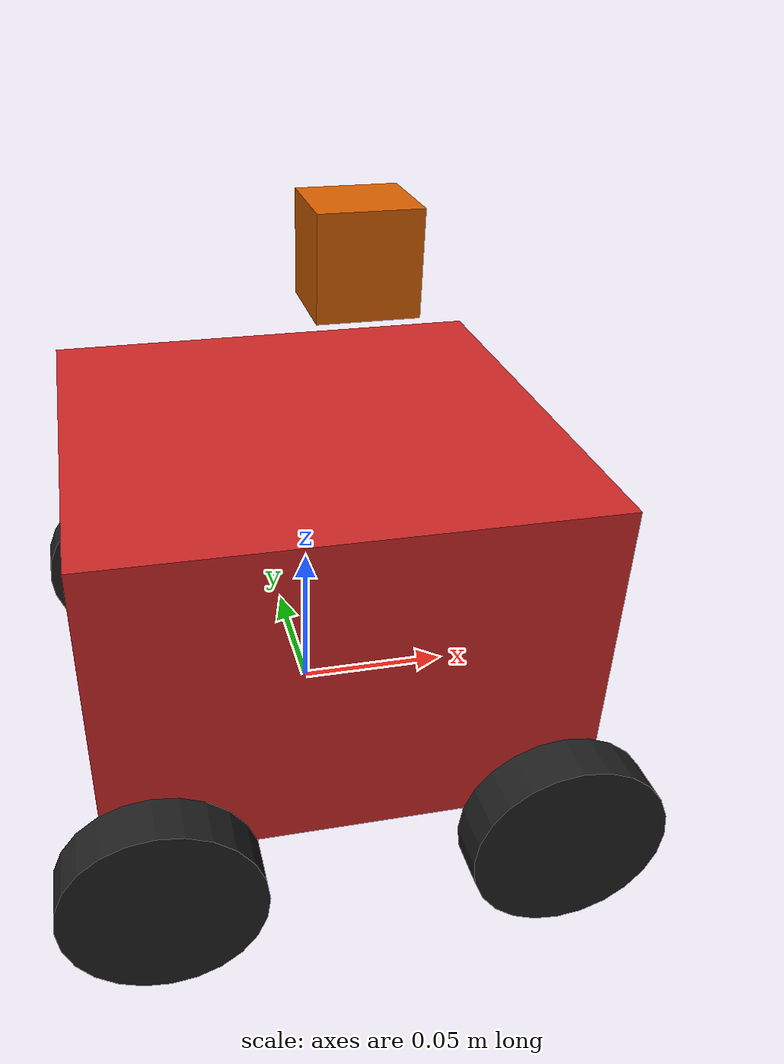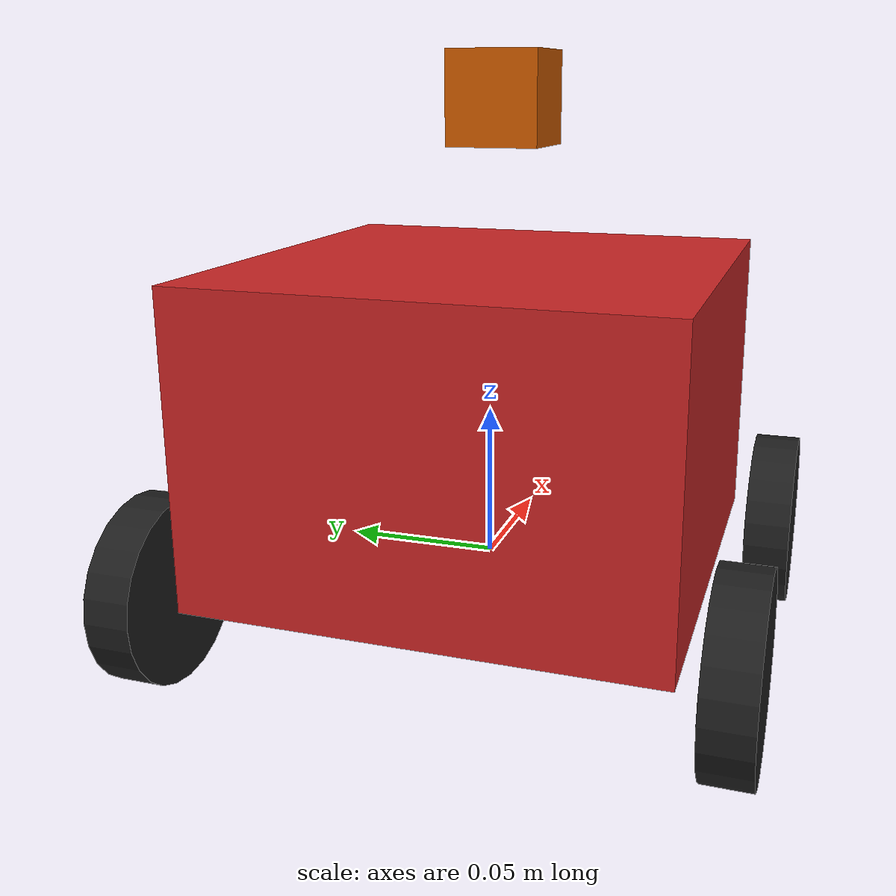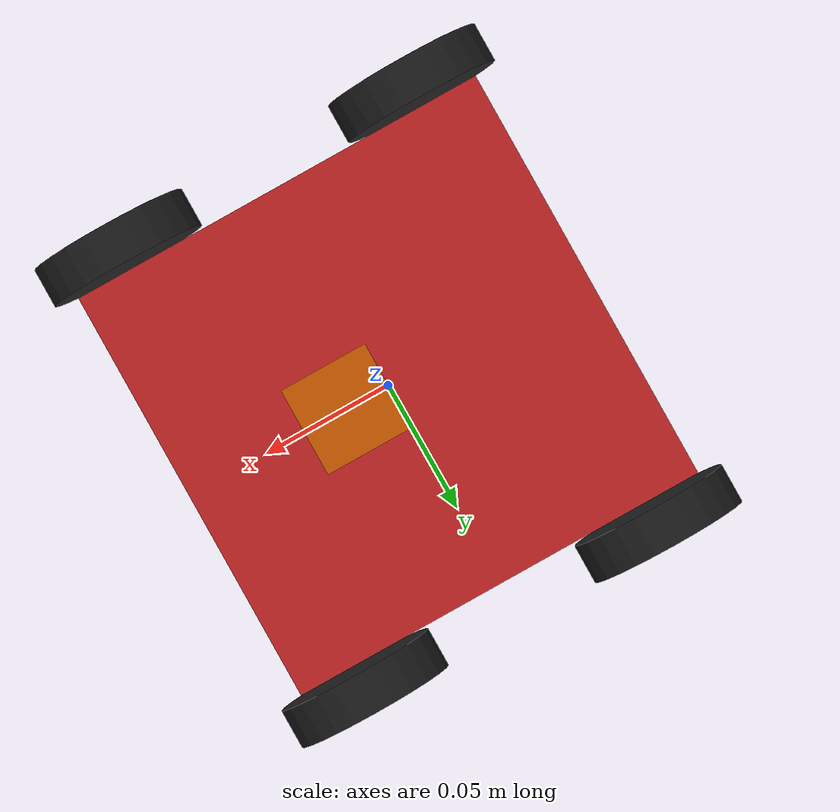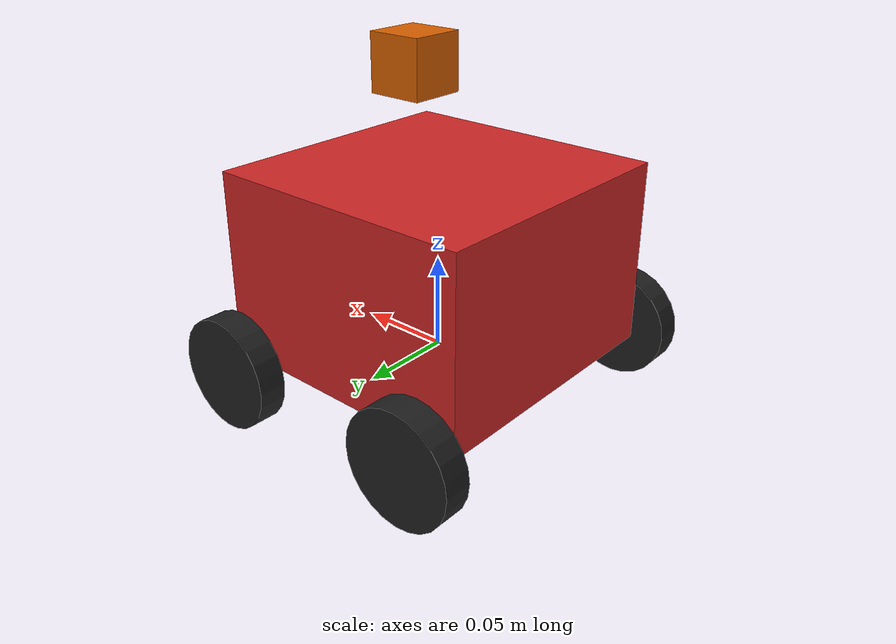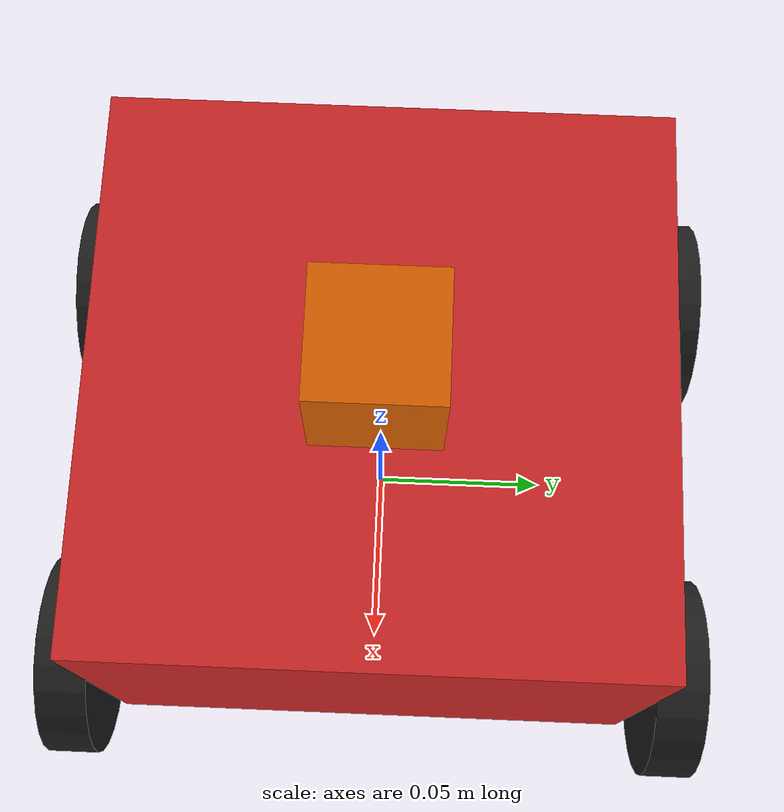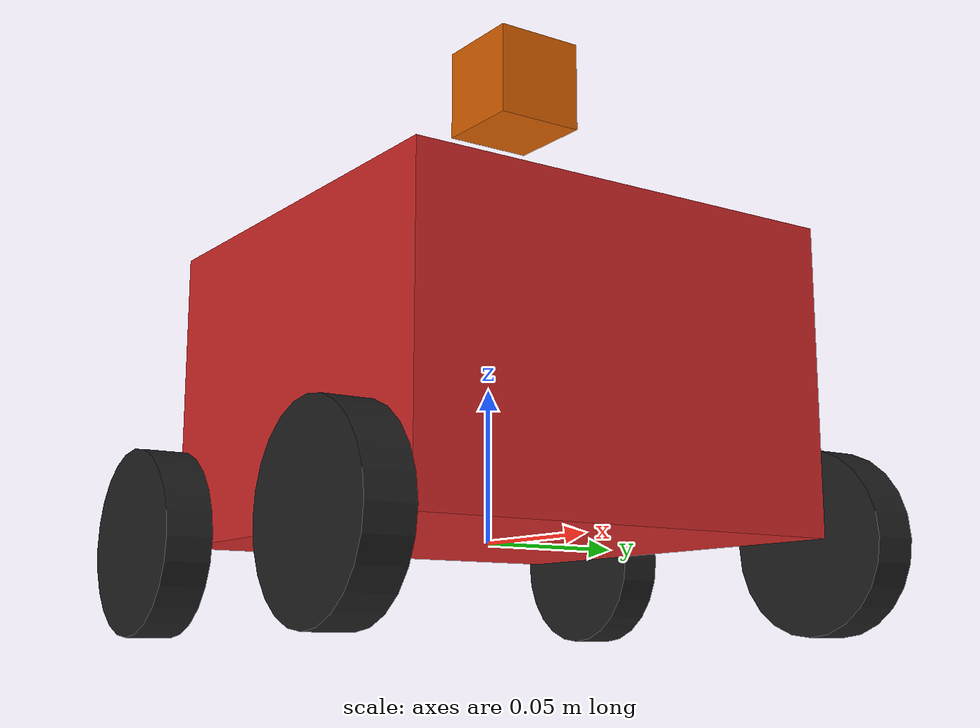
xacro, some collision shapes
<?xml version='1.0'?>

<robot name="atom" xmlns:xacro="http://www.ros.org/wiki/xacro">
	<xacro:property name="robot_name" value="atom" />
	<xacro:property name="robot_chassis_mass" value="15"/>
	<xacro:property name="robot_chassis_length" value="0.06"/>
	<xacro:property name="robot_chassis_radius" value="0.075"/>
	<xacro:property name="robot_caster_wheel_radius" value="0.015"/>
	<xacro:property name="robot_caster_wheel_radius_collision" value="0.01497"/>

	<xacro:property name="robot_wheel_mass" value="5"/>
	<xacro:property name="robot_wheel_length" value="0.015"/>
	<xacro:property name="robot_wheel_radius" value="0.03"/>
	<xacro:property name="hokoyu_mass" value="1e-5"/>

	<!-- Make Chassis of Bot -->
	<link name="chassis">
		<pose>0 0 0.1 0 0 0</pose>

		<inertial>
			<mass value="${robot_chassis_mass}"/>
      		<origin xyz="0.0 0 0" rpy=" 0 0 0"/>

      		<inertia
      			ixx="0.147116667" ixy="0" ixz="0"
      			iyy="0.334951167" iyz="0"
      			izz="0.3978345"
      		/>
		</inertial>

		<collision name="collision">
			<origin xyz="0 0 0.05" rpy=" 0 0 0"/>
			<geometry>
				<box size="0.15 0.15 0.1"/>
			</geometry>
		</collision>

		<visual name="chassis_visual">
			<origin xyz="0 0 0.05" rpy=" 0 0 0"/>
			<geometry>
				<box size="0.15 0.15 0.1"/>
			</geometry>

		</visual>

	</link>

	<!-- Right Wheel Back -->
	<link name="right_wheel_back">
		<inertial>
			<mass value="${robot_wheel_mass}"/>
			<origin xyz="0 0 0" rpy="0 1.5707 1.5707"/>
			<inertia
				ixx="0.1" ixy="0.0" ixz="0.0"
				iyy="0.1" iyz="0.0"
				izz="0.1"
			/>
		</inertial>

		<visual>
			<origin xyz="0 0 0" rpy="0 1.5707 1.5707"/>
			<geometry>
				<cylinder radius="${robot_wheel_radius}" length="${robot_wheel_length}"/>
			</geometry>
		</visual>

		<collision>
			<origin xyz="0 0 0" rpy="0 1.5707 1.5707"/>
			<geometry>
				<cylinder radius="${robot_wheel_radius}" length="${robot_wheel_length}"/>
			</geometry>
		</collision>

	</link>

	<!-- Right Wheel Front-->
	<link name="right_wheel_front">
		<inertial>
			<mass value="${robot_wheel_mass}"/>
			<origin xyz="0 0 0" rpy="0 1.5707 1.5707"/>
			<inertia
				ixx="0.1" ixy="0.0" ixz="0.0"
				iyy="0.1" iyz="0.0"
				izz="0.1"
			/>
		</inertial>

		<visual>
			<origin xyz="0 0 0" rpy="0 1.5707 1.5707"/>
			<geometry>
				<cylinder radius="${robot_wheel_radius}" length="${robot_wheel_length}"/>
			</geometry>
		</visual>

		<collision>
			<origin xyz="0 0 0" rpy="0 1.5707 1.5707"/>
			<geometry>
				<cylinder radius="${robot_wheel_radius}" length="${robot_wheel_length}"/>
			</geometry>
		</collision>

	</link>

	<!-- Left wheel Back-->
	<link name="left_wheel_back">
		<inertial>
			<mass value="${robot_wheel_mass}"/>
			<origin xyz="0 0 0" rpy="0 1.5707 1.5707"/>
			<inertia
				ixx="0.1" ixy="0.0" ixz="0.0"
				iyy="0.1" iyz="0.0"
				izz="0.1"
			/>
		</inertial>

		<visual>
			<origin xyz="0 0 0" rpy="0 1.5707 1.5707"/>
			<geometry>
				<cylinder radius="${robot_wheel_radius}" length="${robot_wheel_length}"/>
			</geometry>
		</visual>

		<collision>
			<origin xyz="0 0 0" rpy="0 1.5707 1.5707"/>
			<geometry>
				<cylinder radius="${robot_wheel_radius}" length="${robot_wheel_length}"/>
			</geometry>
		</collision>

	</link>

	<!-- Left wheel Front-->
	<link name="left_wheel_front">
		<inertial>
			<mass value="${robot_wheel_mass}"/>
			<origin xyz="0 0 0" rpy="0 1.5707 1.5707"/>
			<inertia
				ixx="0.1" ixy="0.0" ixz="0.0"
				iyy="0.1" iyz="0.0"
				izz="0.1"
			/>
		</inertial>

		<visual>
			<origin xyz="0 0 0" rpy="0 1.5707 1.5707"/>
			<geometry>
				<cylinder radius="${robot_wheel_radius}" length="${robot_wheel_length}"/>
			</geometry>
		</visual>

		<collision>
			<origin xyz="0 0 0" rpy="0 1.5707 1.5707"/>
			<geometry>
				<cylinder radius="${robot_wheel_radius}" length="${robot_wheel_length}"/>
			</geometry>
		</collision>

	</link>

	<!-- Hokuyo Lidar -->
	<link name="hokuyo">
		<inertial>
			<mass value="${hokoyu_mass}"/>
			<origin xyz="0 0 0" rpy="0 0 0"/>

			<inertia
		        ixx="1e-6" ixy="0.0" ixz="0.0"
		        iyy="1e-6" iyz="0.0"
		        izz="1e-6"
		      />
		</inertial>

		<visual>
			<origin xyz="0 0 0" rpy="0 0 0"/>
			<geometry>
				<mesh filename="/home/dolos/JADM/MultiRobots/src/atom/urdf/hokuyo.dae"/>
			</geometry>
		</visual>

		<collision>
			<origin xyz="0 0 0" rpy="0 0 0"/>
			<geometry>
				<box size="0.03 0.03 0.03"/>
			</geometry>
		</collision>
	</link>

	<!-- Project center to the ground -->
	<link name="robot_footprint"></link>

	<!-- Define Joints -->

	<!-- Right Wheel Joint Back-->
	<joint type="continuous" name="right_wheel_hinge_back">
	    <origin xyz="-0.06 -0.09 0" rpy="0 0 0" />
	    <parent link="chassis"/>
	    <child link="right_wheel_back" />
	    <axis xyz="0 1 0" rpy="0 0 0" />
	    <limit effort="10000" velocity="1000" />
	    <dynamics damping="1.0" friction="1.0" />
	</joint>

	<!-- Right Wheel Joint Front-->
	<joint type="continuous" name="right_wheel_hinge_front">
	    <origin xyz="0.06 -0.09 0" rpy="0 0 0" />
	    <parent link="chassis"/>
	    <child link="right_wheel_front" />
	    <axis xyz="0 1 0" rpy="0 0 0" />
	    <limit effort="10000" velocity="1000" />
	    <dynamics damping="1.0" friction="1.0" />
	</joint>

	<!-- Left Wheel Joint Back-->
	<joint type="continuous" name="left_wheel_hinge_back">
	    <origin xyz="-0.06 0.09 0" rpy="0 0 0" />
	    <parent link="chassis"/>
	    <child link="left_wheel_back" />
	    <axis xyz="0 1 0" rpy="0 0 0" />
	    <limit effort="10000" velocity="1000" />
	    <dynamics damping="1.0" friction="1.0" />
	</joint>

	<!-- Left Wheel Joint Front-->
	<joint type="continuous" name="left_wheel_hinge_front">
	    <origin xyz="0.06 0.09 0" rpy="0 0 0" />
	    <parent link="chassis"/>
	    <child link="left_wheel_front" />
	    <axis xyz="0 1 0" rpy="0 0 0" />
	    <limit effort="10000" velocity="1000" />
	    <dynamics damping="1.0" friction="1.0" />
	</joint>

	<joint name="robot_footprint_joint" type="fixed">
		<origin xyz="0 0 0" rpy="0 0 0" />
		<parent link="robot_footprint"/>
		<child link="chassis" />
	</joint>

	<!-- Hokoyu Joint -->
	<joint name="hokuyo_joint" type="fixed">
	    <origin xyz="0.015 0 0.15" rpy="0 0 0" />
	    <parent link="chassis"/>
	    <child link="hokuyo" />
	    <axis xyz="0 1 0"/>
	</joint>

	<!-- Color of bot -->
	<gazebo reference="left_wheel_front">
		<material>Gazebo/Black</material>
		<kp>1000000.0</kp> <!-- kp and kd for rubber -->
		<kd>100.0</kd>
		<mu1>1.0</mu1>
		<mu2>1.0</mu2>
		<maxVel>1.0</maxVel>
		<minDepth>0.00</minDepth>
	</gazebo>

	<gazebo reference="left_wheel_back">
		<material>Gazebo/Black</material>
		<kp>1000000.0</kp> <!-- kp and kd for rubber -->
		<kd>100.0</kd>
		<mu1>1.0</mu1>
		<mu2>1.0</mu2>
		<maxVel>1.0</maxVel>
		<minDepth>0.00</minDepth>
	</gazebo>

	<gazebo reference="right_wheel_front">
		<material>Gazebo/Black</material>
		<kp>1000000.0</kp> <!-- kp and kd for rubber -->
		<kd>100.0</kd>
		<mu1>1.0</mu1>
		<mu2>1.0</mu2>
		<maxVel>1.0</maxVel>
		<minDepth>0.00</minDepth>
	</gazebo>
	<gazebo reference="right_wheel_back">
		<material>Gazebo/Black</material>
		<kp>1000000.0</kp> <!-- kp and kd for rubber -->
		<kd>100.0</kd>
		<mu1>1.0</mu1>
		<mu2>1.0</mu2>
		<maxVel>1.0</maxVel>
		<minDepth>0.00</minDepth>
	</gazebo>

	<gazebo reference="chassis">
		<material>Gazebo/Red</material>
	</gazebo>

	<!-- Motor, Camera and Lidar Simulation -->
<xacro:include filename="$(find atom)/urdf/atom.gazebo" />

</robot>
